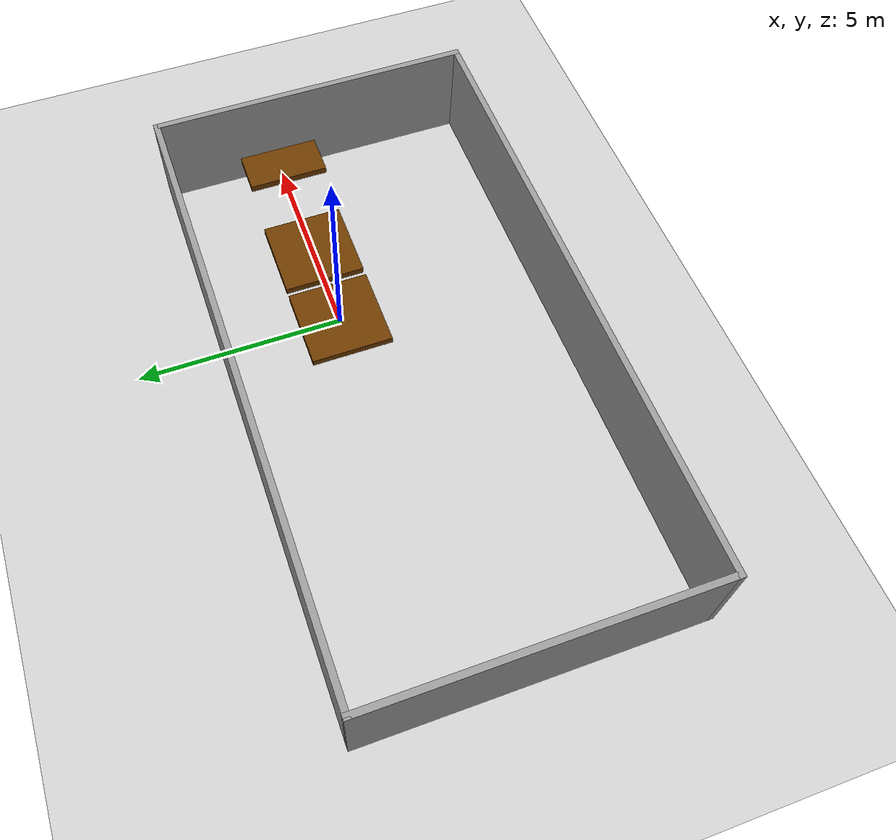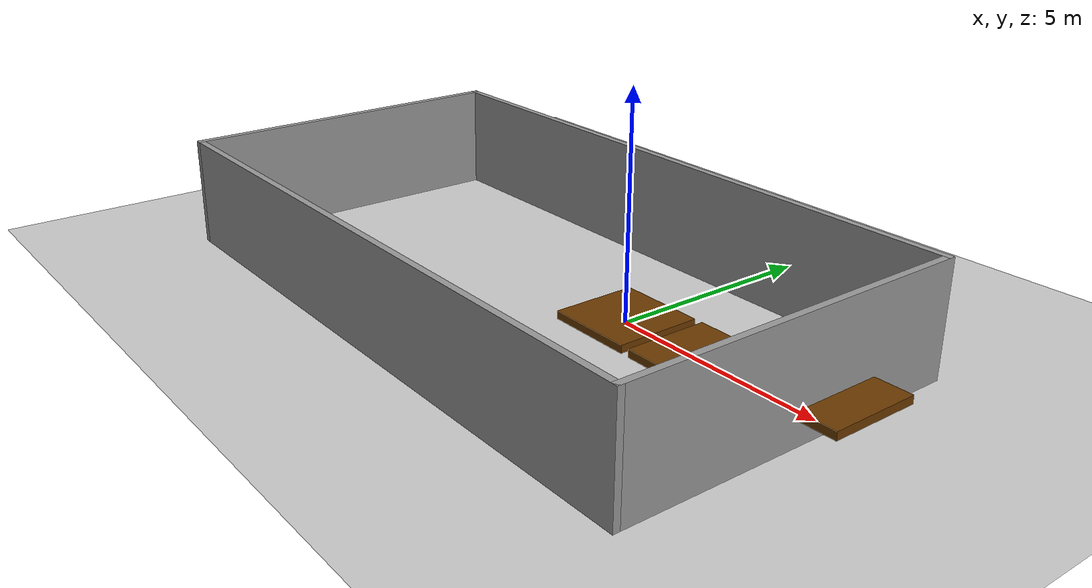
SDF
<?xml version="1.0" ?>
<sdf version="1.5">
    <world name="default">

        <physics type="ode">
        <max_step_size>0.001</max_step_size>
        <real_time_factor>1</real_time_factor>
        <real_time_update_rate>1000</real_time_update_rate>
        <gravity>0 0 -9.81</gravity>
            <ode>
                <solver>
                <type>quick</type>
                <iters>50</iters>
                <sor>1.3</sor>
                </solver>
                <constraints>
                <cfm>0.0</cfm>
                <erp>0.2</erp>
                <contact_max_correcting_vel>10.0</contact_max_correcting_vel>
                <contact_surface_layer>0.001</contact_surface_layer>
                </constraints>
            </ode>
        </physics>

        <scene>
        <sky>
            <clouds>
                <speed>12</speed>
            </clouds>
        </sky>
        </scene>
        <!-- A global light source -->
        <include>
            <uri>model://sun</uri>
        </include>
        <!-- A ground plane -->
        <include>
            <uri>model://ground_plane</uri>
        </include>
        <!-- environment blocks, obstacles or stairs -->
        <model name="static_environment">
        <static>true</static>
            <link name="floor">
                <pose>0 0 0.09 0 0 0</pose>
                <collision name="floor_collision">
                    <geometry>
                        <box>
                            <size>2 2 0.18</size>
                        </box>
                    </geometry>
                </collision>
                <visual name="floor_visual">
                    <geometry>
                        <box>
                            <size>2 2 0.18</size>
                        </box>
                    </geometry>
                    <material>
                        <ambient>0.2 0.2 0.2 1.0</ambient>
                        <diffuse>.421 0.225 0.0 1.0</diffuse>
                    </material>
                </visual>
            </link>

            <link name="floor2">
                <pose>2.2 0 0.09 0 0 0</pose>
                <collision name="floor2_collision">
                    <geometry>
                        <box>
                            <size>2 2 0.18</size>
                        </box>
                    </geometry>
                </collision>
                <visual name="floor2_visual">
                    <geometry>
                        <box>
                            <size>2 2 0.18</size>
                        </box>
                    </geometry>
                    <material>
                        <ambient>0.2 0.2 0.2 1.0</ambient>
                        <diffuse>.421 0.225 0.0 1.0</diffuse>
                    </material>
                </visual>
            </link>

            <link name="floor3">
                <pose>5.2 0 0.63 0 0 0</pose>
                <collision name="floor3_collision">
                    <geometry>
                        <box>
                            <size>2 2 0.18</size>
                        </box>
                    </geometry>
                </collision>
                <visual name="floor3_visual">
                    <geometry>
                        <box>
                            <size>2 2 0.18</size>
                        </box>
                    </geometry>
                    <material>
                        <ambient>0.2 0.2 0.2 1.0</ambient>
                        <diffuse>.421 0.225 0.0 1.0</diffuse>
                    </material>
                </visual>
            </link>

        </model>

        <include>
            <uri>model:///home/unitree/catkin_ws/src/unitree_ros/unitree_gazebo/worlds/building_editor_models/stairs</uri>
        </include>

    </world>
</sdf>

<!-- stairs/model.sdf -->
<sdf version='1.7'>
  <model name='myworld'>
    <pose>-2.12122 -1.02203 0 0 -0 0</pose>
    <link name='Wall_2'>
      <collision name='Wall_2_Collision'>
        <geometry>
          <box>
            <size>15 0.15 2.5</size>
          </box>
        </geometry>
        <pose>0 0 1.25 0 -0 0</pose>
      </collision>
      <visual name='Wall_2_Visual'>
        <pose>0 0 1.25 0 -0 0</pose>
        <geometry>
          <box>
            <size>15 0.15 2.5</size>
          </box>
        </geometry>
        <material>
          <script>
            <uri>file://media/materials/scripts/gazebo.material</uri>
            <name>Gazebo/Grey</name>
          </script>
          <ambient>1 1 1 1</ambient>
        </material>
        <meta>
          <layer>0</layer>
        </meta>
      </visual>
      <pose>0 3.925 0 0 -0 0</pose>
    </link>
    <link name='Wall_3'>
      <collision name='Wall_3_Collision'>
        <geometry>
          <box>
            <size>8 0.15 2.5</size>
          </box>
        </geometry>
        <pose>0 0 1.25 0 -0 0</pose>
      </collision>
      <visual name='Wall_3_Visual'>
        <pose>0 0 1.25 0 -0 0</pose>
        <geometry>
          <box>
            <size>8 0.15 2.5</size>
          </box>
        </geometry>
        <material>
          <script>
            <uri>file://media/materials/scripts/gazebo.material</uri>
            <name>Gazebo/Grey</name>
          </script>
          <ambient>1 1 1 1</ambient>
        </material>
        <meta>
          <layer>0</layer>
        </meta>
      </visual>
      <pose>7.425 0 0 0 -0 -1.5708</pose>
    </link>
    <link name='Wall_4'>
      <collision name='Wall_4_Collision'>
        <geometry>
          <box>
            <size>15 0.15 2.5</size>
          </box>
        </geometry>
        <pose>0 0 1.25 0 -0 0</pose>
      </collision>
      <visual name='Wall_4_Visual'>
        <pose>0 0 1.25 0 -0 0</pose>
        <geometry>
          <box>
            <size>15 0.15 2.5</size>
          </box>
        </geometry>
        <material>
          <script>
            <uri>file://media/materials/scripts/gazebo.material</uri>
            <name>Gazebo/Grey</name>
          </script>
          <ambient>1 1 1 1</ambient>
        </material>
        <meta>
          <layer>0</layer>
        </meta>
      </visual>
      <pose>0 -3.925 0 0 -0 3.14159</pose>
    </link>
    <link name='Wall_5'>
      <collision name='Wall_5_Collision'>
        <geometry>
          <box>
            <size>8 0.15 2.5</size>
          </box>
        </geometry>
        <pose>0 0 1.25 0 -0 0</pose>
      </collision>
      <visual name='Wall_5_Visual'>
        <pose>0 0 1.25 0 -0 0</pose>
        <geometry>
          <box>
            <size>8 0.15 2.5</size>
          </box>
        </geometry>
        <material>
          <script>
            <uri>file://media/materials/scripts/gazebo.material</uri>
            <name>Gazebo/Grey</name>
          </script>
          <ambient>1 1 1 1</ambient>
        </material>
        <meta>
          <layer>0</layer>
        </meta>
      </visual>
      <pose>-7.425 0 0 0 -0 1.5708</pose>
    </link>
    <static>1</static>
  </model>
</sdf>
